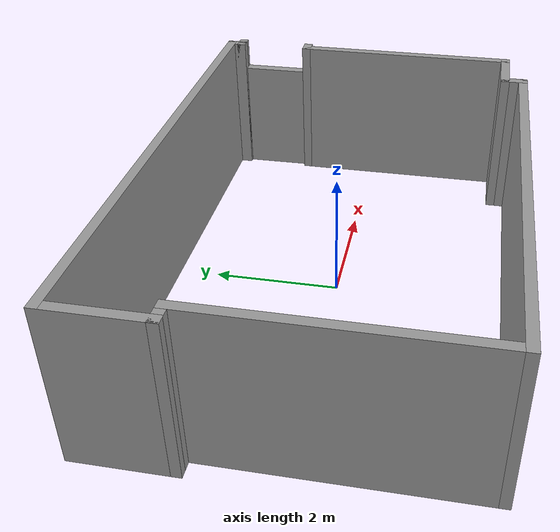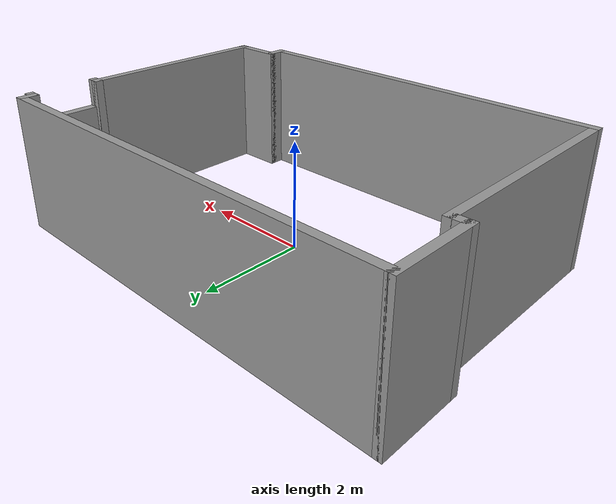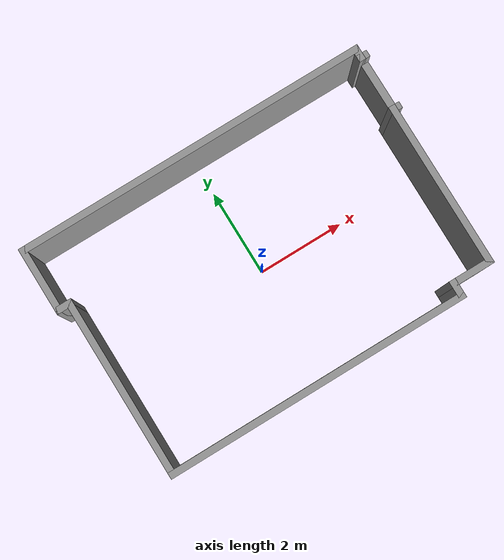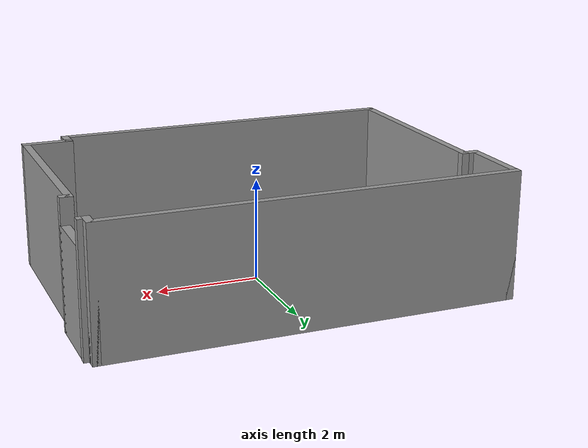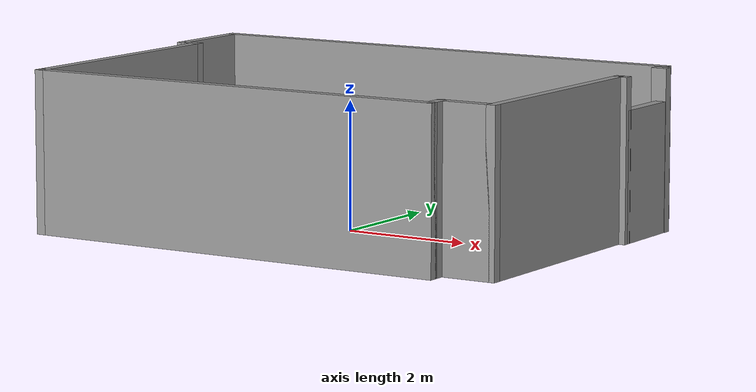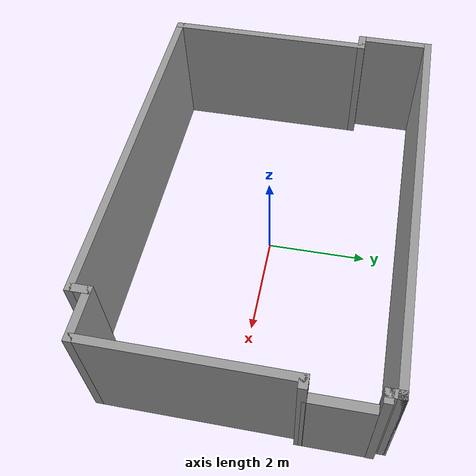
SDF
<?xml version='1.0'?>
<sdf version='1.7'>
  <model name='labroom_wall_door'>
    <pose>-0 -0 0 0 -0 0</pose>
    <link name='Door_0'>
      <collision name='Door_0_Collision'>
        <geometry>
          <box>
            <size>1.25 0.17 2</size>
          </box>
        </geometry>
        <pose>0 0 1 0 -0 0</pose>
      </collision>
      <visual name='Door_0_Visual'>
        <pose>0 0 1 0 -0 0</pose>
        <geometry>
          <box>
            <size>1.25 0.17 2</size>
          </box>
        </geometry>
        <material>
          <script>
            <uri>file://media/materials/scripts/gazebo.material</uri>
            <name>Gazebo/Grey</name>
          </script>
        </material>
      </visual>
      <pose>3.98685 1.875 0 0 -0 -1.56516</pose>
    </link>
    <link name='Wall_0'>
      <collision name='Wall_0_Collision'>
        <geometry>
          <box>
            <size>8.05 0.15 2.5</size>
          </box>
        </geometry>
        <pose>0 0 1.25 0 -0 0</pose>
      </collision>
      <visual name='Wall_0_Visual'>
        <pose>0 0 1.25 0 -0 0</pose>
        <geometry>
          <box>
            <size>8.05 0.15 2.5</size>
          </box>
        </geometry>
        <material>
          <script>
            <uri>file://media/materials/scripts/gazebo.material</uri>
            <name>Gazebo/Grey</name>
          </script>
          <ambient>1 1 1 1</ambient>
        </material>
        <meta>
          <layer>0</layer>
        </meta>
      </visual>
      <pose>-0.05 2.7 0 0 -0 0</pose>
    </link>
    <link name='Wall_10'>
      <collision name='Wall_10_Collision'>
        <geometry>
          <box>
            <size>3.8 0.15 2.5</size>
          </box>
        </geometry>
        <pose>0 0 1.25 0 -0 0</pose>
      </collision>
      <visual name='Wall_10_Visual'>
        <pose>0 0 1.25 0 -0 0</pose>
        <geometry>
          <box>
            <size>3.8 0.15 2.5</size>
          </box>
        </geometry>
        <material>
          <script>
            <uri>file://media/materials/scripts/gazebo.material</uri>
            <name>Gazebo/Grey</name>
          </script>
          <ambient>1 1 1 1</ambient>
        </material>
        <meta>
          <layer>0</layer>
        </meta>
      </visual>
      <pose>3.9 -0.575 0 0 -0 -1.5708</pose>
    </link>
    <link name='Wall_12'>
      <collision name='Wall_12_Collision'>
        <geometry>
          <box>
            <size>1 0.15 2.5</size>
          </box>
        </geometry>
        <pose>0 0 1.25 0 -0 0</pose>
      </collision>
      <visual name='Wall_12_Visual'>
        <pose>0 0 1.25 0 -0 0</pose>
        <geometry>
          <box>
            <size>1 0.15 2.5</size>
          </box>
        </geometry>
        <material>
          <script>
            <uri>file://media/materials/scripts/gazebo.material</uri>
            <name>Gazebo/Grey</name>
          </script>
          <ambient>1 1 1 1</ambient>
        </material>
        <meta>
          <layer>0</layer>
        </meta>
      </visual>
      <pose>3.475 -2.4 0 0 -0 3.14159</pose>
    </link>
    <link name='Wall_14'>
      <collision name='Wall_14_Collision'>
        <geometry>
          <box>
            <size>0.45 0.15 2.5</size>
          </box>
        </geometry>
        <pose>0 0 1.25 0 -0 0</pose>
      </collision>
      <visual name='Wall_14_Visual'>
        <pose>0 0 1.25 0 -0 0</pose>
        <geometry>
          <box>
            <size>0.45 0.15 2.5</size>
          </box>
        </geometry>
        <material>
          <script>
            <uri>file://media/materials/scripts/gazebo.material</uri>
            <name>Gazebo/Grey</name>
          </script>
          <ambient>1 1 1 1</ambient>
        </material>
        <meta>
          <layer>0</layer>
        </meta>
      </visual>
      <pose>3.05 -2.55 0 0 -0 -1.5708</pose>
    </link>
    <link name='Wall_16'>
      <collision name='Wall_16_Collision'>
        <geometry>
          <box>
            <size>6.95 0.15 2.5</size>
          </box>
        </geometry>
        <pose>0 0 1.25 0 -0 0</pose>
      </collision>
      <visual name='Wall_16_Visual'>
        <pose>0 0 1.25 0 -0 0</pose>
        <geometry>
          <box>
            <size>6.95 0.15 2.5</size>
          </box>
        </geometry>
        <material>
          <script>
            <uri>file://media/materials/scripts/gazebo.material</uri>
            <name>Gazebo/Grey</name>
          </script>
          <ambient>1 1 1 1</ambient>
        </material>
        <meta>
          <layer>0</layer>
        </meta>
      </visual>
      <pose>-0.35 -2.7 0 0 -0 3.14159</pose>
    </link>
    <link name='Wall_18'>
      <collision name='Wall_18_Collision'>
        <geometry>
          <box>
            <size>4.15 0.15 2.5</size>
          </box>
        </geometry>
        <pose>0 0 1.25 0 -0 0</pose>
      </collision>
      <visual name='Wall_18_Visual'>
        <pose>0 0 1.25 0 -0 0</pose>
        <geometry>
          <box>
            <size>4.15 0.15 2.5</size>
          </box>
        </geometry>
        <material>
          <script>
            <uri>file://media/materials/scripts/gazebo.material</uri>
            <name>Gazebo/Grey</name>
          </script>
          <ambient>1 1 1 1</ambient>
        </material>
        <meta>
          <layer>0</layer>
        </meta>
      </visual>
      <pose>-3.75 -0.7 0 0 -0 1.5708</pose>
    </link>
    <link name='Wall_2'>
      <collision name='Wall_2_Collision'>
        <geometry>
          <box>
            <size>0.35 0.15 2.5</size>
          </box>
        </geometry>
        <pose>0 0 1.25 0 -0 0</pose>
      </collision>
      <visual name='Wall_2_Visual'>
        <pose>0 0 1.25 0 -0 0</pose>
        <geometry>
          <box>
            <size>0.35 0.15 2.5</size>
          </box>
        </geometry>
        <material>
          <script>
            <uri>file://media/materials/scripts/gazebo.material</uri>
            <name>Gazebo/Grey</name>
          </script>
          <ambient>1 1 1 1</ambient>
        </material>
        <meta>
          <layer>0</layer>
        </meta>
      </visual>
      <pose>3.9 2.6 0 0 -0 -1.5708</pose>
    </link>
    <link name='Wall_20'>
      <collision name='Wall_20_Collision'>
        <geometry>
          <box>
            <size>0.4 0.15 2.5</size>
          </box>
        </geometry>
        <pose>0 0 1.25 0 -0 0</pose>
      </collision>
      <visual name='Wall_20_Visual'>
        <pose>0 0 1.25 0 -0 0</pose>
        <geometry>
          <box>
            <size>0.4 0.15 2.5</size>
          </box>
        </geometry>
        <material>
          <script>
            <uri>file://media/materials/scripts/gazebo.material</uri>
            <name>Gazebo/Grey</name>
          </script>
          <ambient>1 1 1 1</ambient>
        </material>
        <meta>
          <layer>0</layer>
        </meta>
      </visual>
      <pose>-3.875 1.3 0 0 -0 3.14159</pose>
    </link>
    <link name='Wall_22'>
      <collision name='Wall_22_Collision'>
        <geometry>
          <box>
            <size>1.55 0.15 2.5</size>
          </box>
        </geometry>
        <pose>0 0 1.25 0 -0 0</pose>
      </collision>
      <visual name='Wall_22_Visual'>
        <pose>0 0 1.25 0 -0 0</pose>
        <geometry>
          <box>
            <size>1.55 0.15 2.5</size>
          </box>
        </geometry>
        <material>
          <script>
            <uri>file://media/materials/scripts/gazebo.material</uri>
            <name>Gazebo/Grey</name>
          </script>
          <ambient>1 1 1 1</ambient>
        </material>
        <meta>
          <layer>0</layer>
        </meta>
      </visual>
      <pose>-4 2 0 0 -0 1.5708</pose>
    </link>
    <link name='Wall_4'>
      <collision name='Wall_4_Collision'>
        <geometry>
          <box>
            <size>0.25 0.15 2.5</size>
          </box>
        </geometry>
        <pose>0 0 1.25 0 -0 0</pose>
      </collision>
      <visual name='Wall_4_Visual'>
        <pose>0 0 1.25 0 -0 0</pose>
        <geometry>
          <box>
            <size>0.25 0.15 2.5</size>
          </box>
        </geometry>
        <material>
          <script>
            <uri>file://media/materials/scripts/gazebo.material</uri>
            <name>Gazebo/Grey</name>
          </script>
          <ambient>1 1 1 1</ambient>
        </material>
        <meta>
          <layer>0</layer>
        </meta>
      </visual>
      <pose>3.95 2.5 0 0 -0 0</pose>
    </link>
    <link name='Wall_8'>
      <collision name='Wall_8_Collision'>
        <geometry>
          <box>
            <size>0.25 0.15 2.5</size>
          </box>
        </geometry>
        <pose>0 0 1.25 0 -0 0</pose>
      </collision>
      <visual name='Wall_8_Visual'>
        <pose>0 0 1.25 0 -0 0</pose>
        <geometry>
          <box>
            <size>0.25 0.15 2.5</size>
          </box>
        </geometry>
        <material>
          <script>
            <uri>file://media/materials/scripts/gazebo.material</uri>
            <name>Gazebo/Grey</name>
          </script>
          <ambient>1 1 1 1</ambient>
        </material>
        <meta>
          <layer>0</layer>
        </meta>
      </visual>
      <pose>3.95 1.25 0 0 -0 3.14159</pose>
    </link>
    <static>1</static>
  </model>
</sdf>
